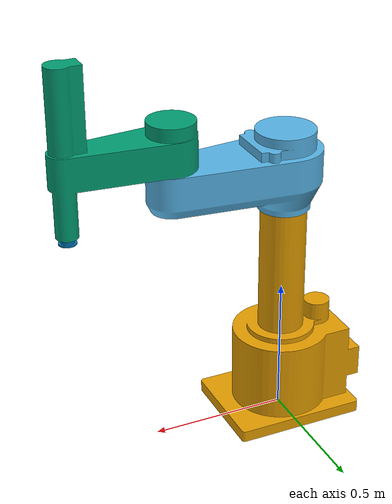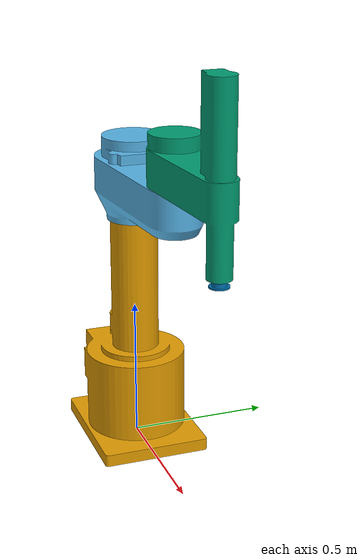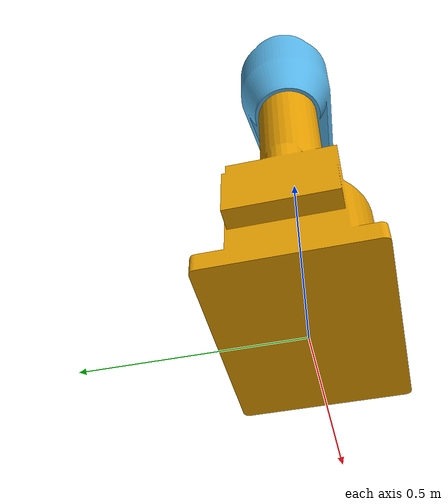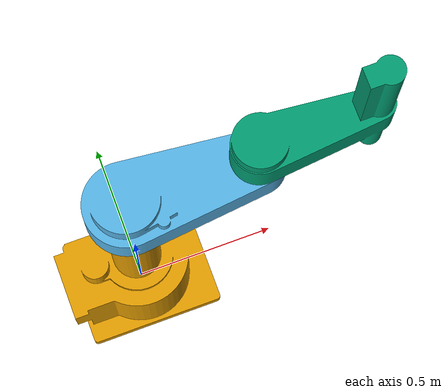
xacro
<?xml version="1.0"?>
<robot name="adept_one" xmlns:xacro="http://wiki.ros.org/xacro">
  <link name="base_link">
    <visual>
      <geometry>
        <mesh filename="package://adept_one_description/meshes/base_link.stl" scale="0.001 0.001 0.001" />
      </geometry>
    </visual>
  </link>

  <link name="link_1">
    <visual>
      <geometry>
        <mesh filename="package://adept_one_description/meshes/link_1.stl" scale="0.001 0.001 0.001" />
      </geometry>
    </visual>
  </link>

  <link name="link_2">
    <visual>
      <geometry>
        <mesh filename="package://adept_one_description/meshes/link_2.stl" scale="0.001 0.001 0.001" />
      </geometry>
    </visual>
  </link>

  <link name="link_3" />

  <link name="link_4">
    <visual>
      <geometry>
        <mesh filename="package://adept_one_description/meshes/link_4.stl" scale="0.001 0.001 0.001" />
      </geometry>
    </visual>
  </link>

  <link name="flange_link" />

  <joint name="joint_1" type="revolute">
    <parent link="base_link" />
    <child link="link_1" />
    <origin xyz="0 0 0.828" />
    <axis xyz="0 0 1" />
    <limit effort="0" velocity="${540/180*pi}" lower="${-150/180*pi}" upper="${150/180*pi}" />
  </joint>

  <joint name="joint_2" type="revolute">
    <parent link="link_1" />
    <child link="link_2" />
    <origin xyz="0.425 0 0.224" />
    <axis xyz="0 0 1" />
    <limit effort="0" velocity="${540/180*pi}" lower="${-147/180*pi}" upper="${147/180*pi}" />
  </joint>

  <joint name="joint_3" type="prismatic">
    <parent link="link_2" />
    <child link="link_3" />
    <origin xyz="0.375 0 -0.1975" />
    <axis xyz="0 0 1" />
    <limit effort="0" velocity="0.5" lower="-0.1975" upper="0" />
  </joint>

  <joint name="joint_4" type="revolute">
    <parent link="link_3" />
    <child link="link_4" />
    <axis xyz="0 0 1" />
    <limit effort="0" velocity="${3600/180*pi}" lower="${-277/180*pi}" upper="${277/180*pi}" />
  </joint>

  <joint name="flange_joint" type="fixed">
    <parent link="link_4" />
    <child link="flange_link" />
    <origin rpy="${pi} 0 0" />
  </joint>
</robot>
